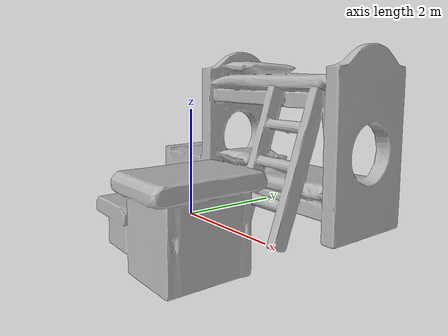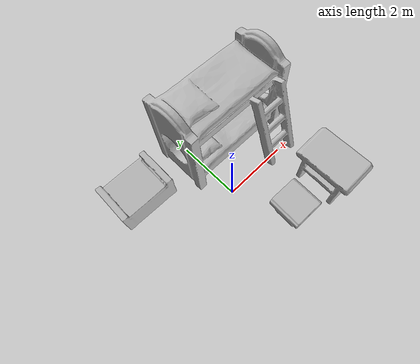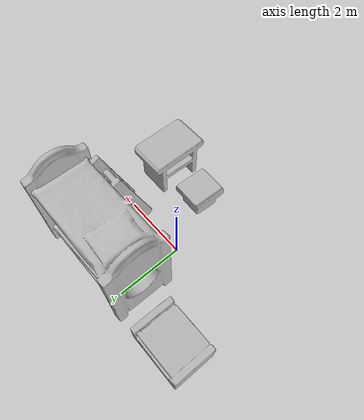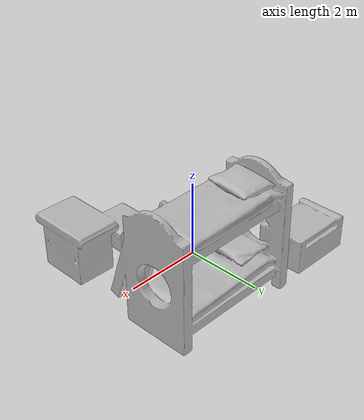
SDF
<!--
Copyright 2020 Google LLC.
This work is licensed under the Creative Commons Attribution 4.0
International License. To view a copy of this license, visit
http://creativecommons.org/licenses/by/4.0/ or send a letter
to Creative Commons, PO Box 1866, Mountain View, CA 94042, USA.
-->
<?xml version="1.0" ?>
<sdf version="1.6">
  <model name="CHILDREN_BEDROOM_CLASSIC">
    <link name="link_0">
      <visual name="visual">
        <geometry>
          <mesh>
            <uri>meshes/model.obj</uri>
            <scale>25 25 25</scale>
          </mesh>
        </geometry>
      </visual>
      <collision name="collision_0">
        <geometry>
          <mesh>
            <uri>meshes/model.obj</uri>
            <scale>25 25 25</scale>
          </mesh>
        </geometry>
      </collision>
    </link>
  </model>
</sdf>
